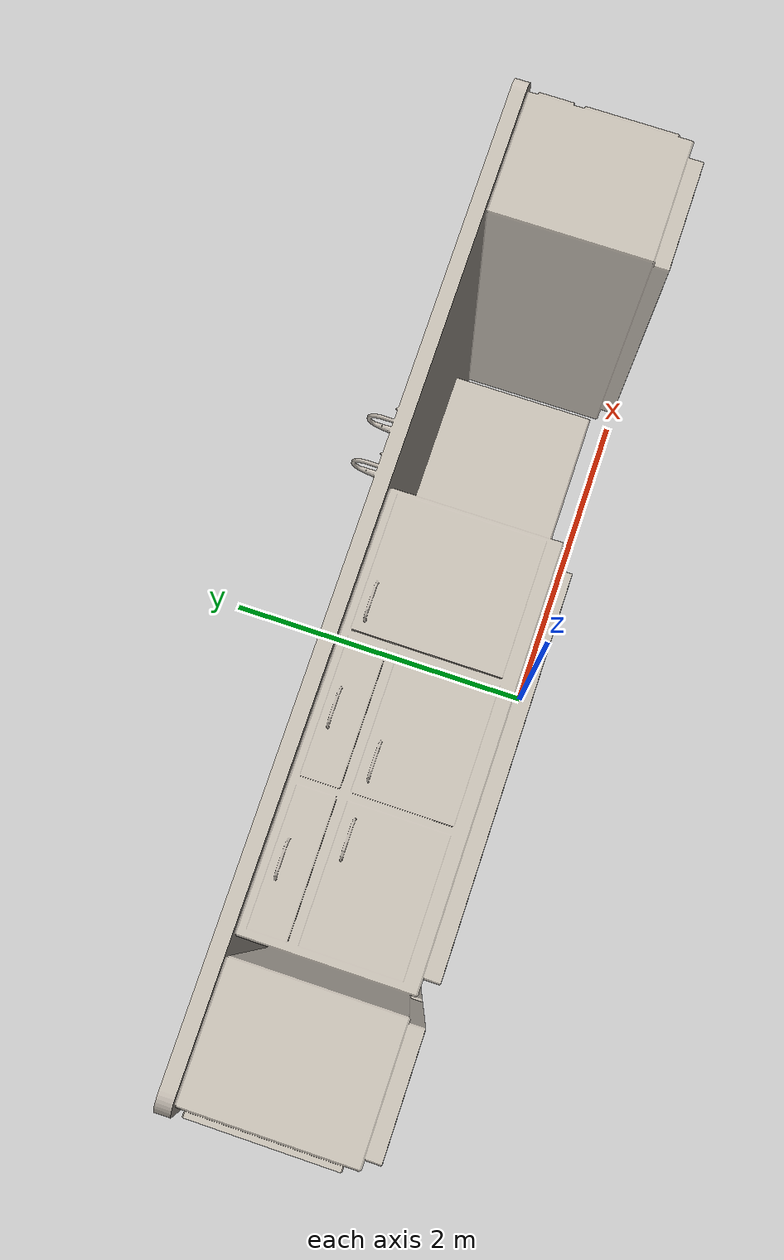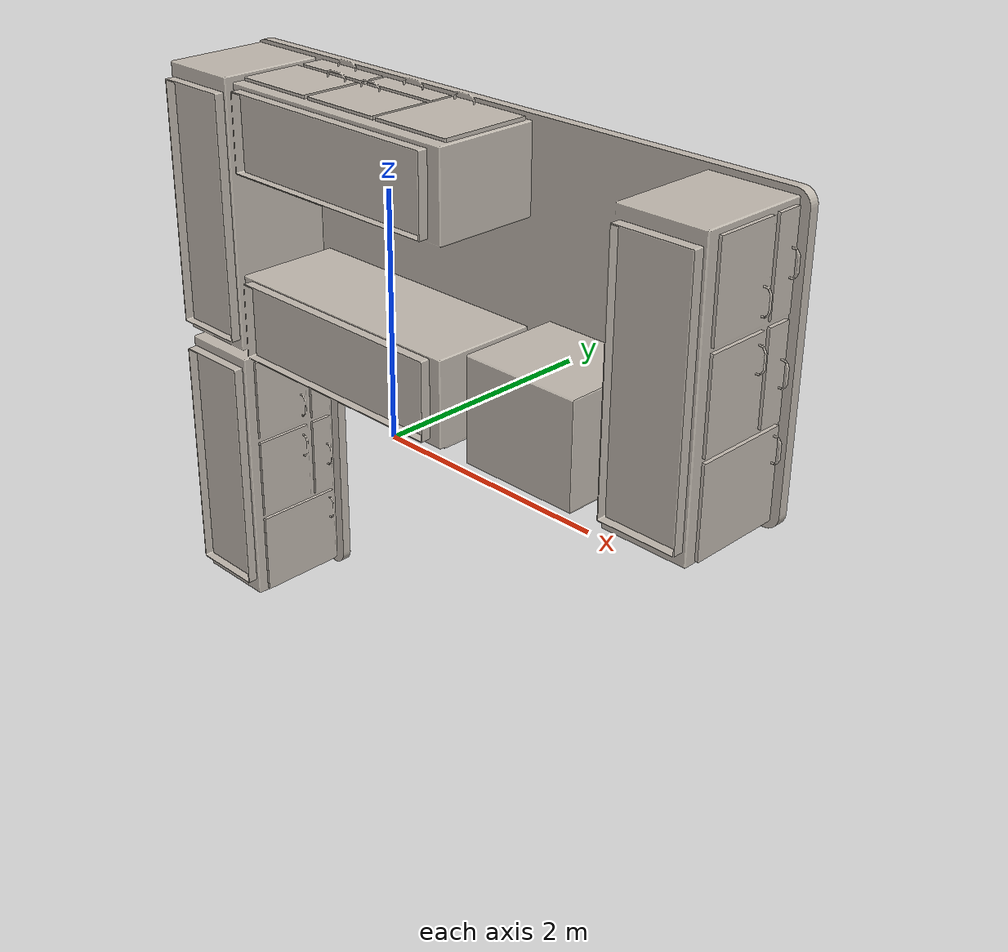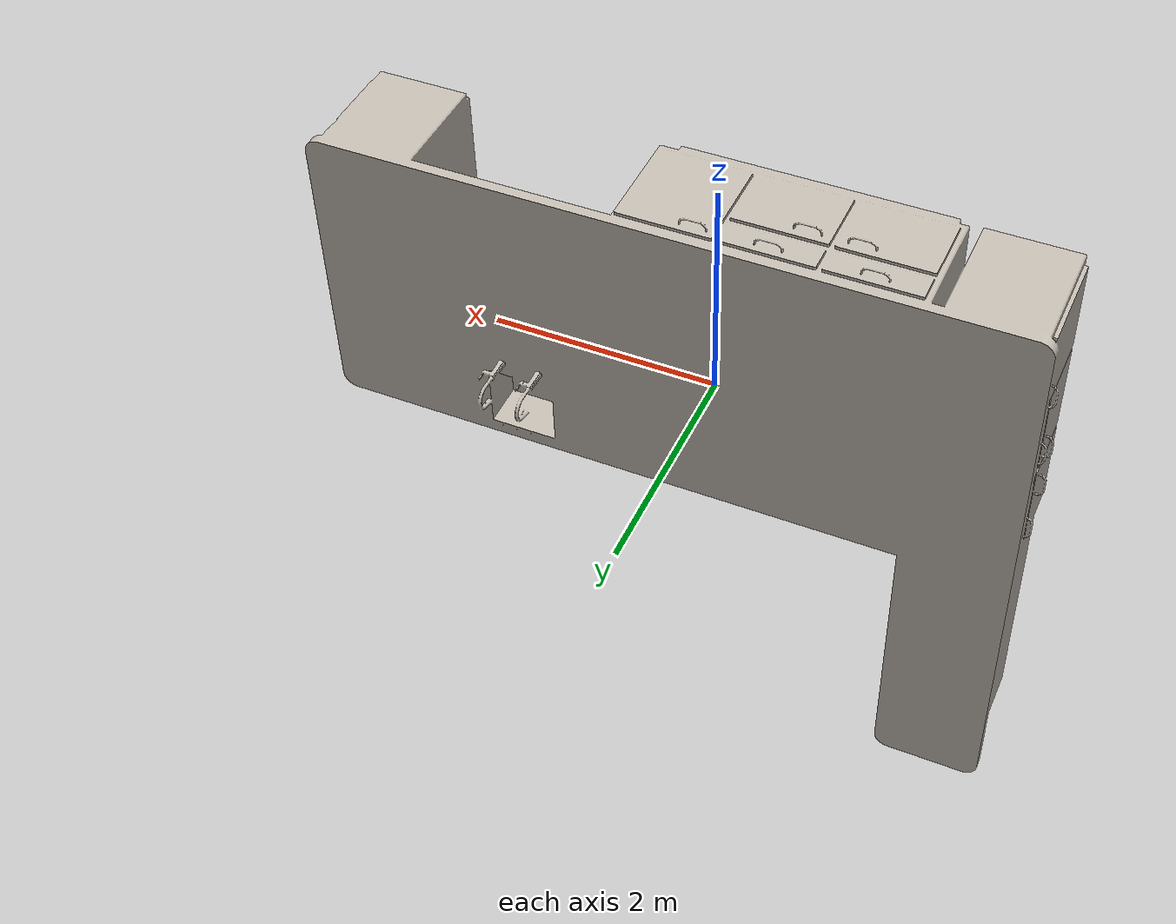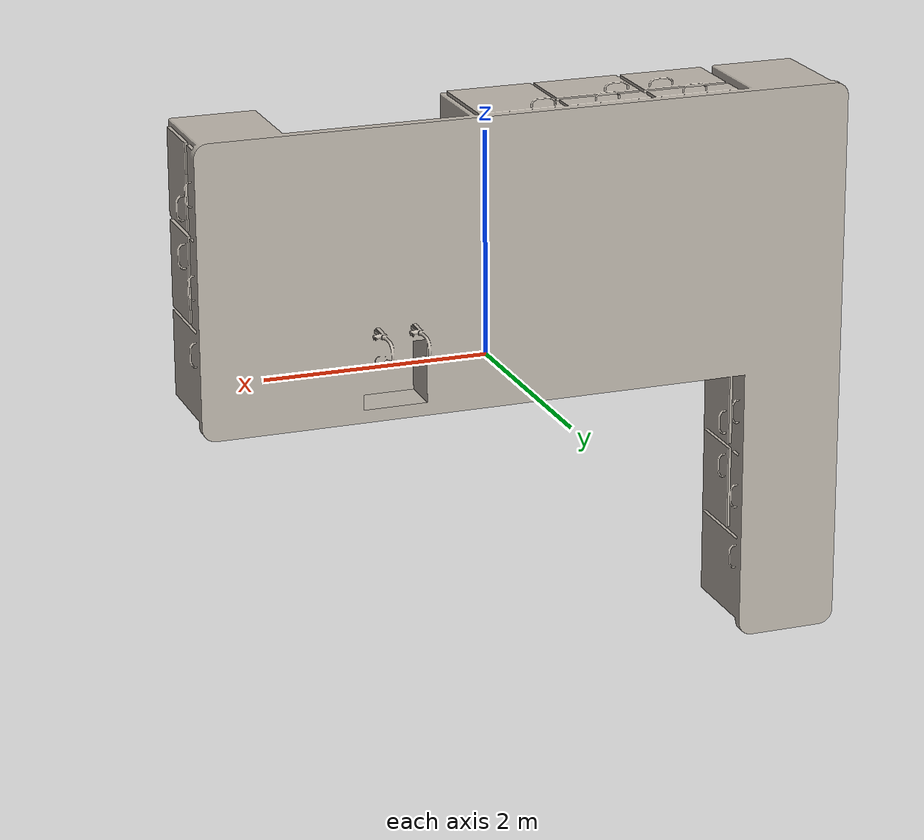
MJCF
<?xml version="1.0" ?>
<mujoco model="chemistry_lab_table">
  <asset>
    <texture type="2d" name="material_0" file="material_0.png"/>
    <material name="material_0" texture="material_0" specular="0.4000000000000001" shininess="0.001"/>
    <mesh file="chemistry_lab_table.obj" scale="0.9311 0.9311 0.9311"/>
    <mesh file="chemistry_lab_table/chemistry_lab_table_collision_0.obj" scale="0.9311 0.9311 0.9311"/>
    <mesh file="chemistry_lab_table/chemistry_lab_table_collision_1.obj" scale="0.9311 0.9311 0.9311"/>
    <mesh file="chemistry_lab_table/chemistry_lab_table_collision_2.obj" scale="0.9311 0.9311 0.9311"/>
    <mesh file="chemistry_lab_table/chemistry_lab_table_collision_3.obj" scale="0.9311 0.9311 0.9311"/>
    <mesh file="chemistry_lab_table/chemistry_lab_table_collision_4.obj" scale="0.9311 0.9311 0.9311"/>
    <mesh file="chemistry_lab_table/chemistry_lab_table_collision_5.obj" scale="0.9311 0.9311 0.9311"/>
    <mesh file="chemistry_lab_table/chemistry_lab_table_collision_6.obj" scale="0.9311 0.9311 0.9311"/>
    <mesh file="chemistry_lab_table/chemistry_lab_table_collision_7.obj" scale="0.9311 0.9311 0.9311"/>
    <mesh file="chemistry_lab_table/chemistry_lab_table_collision_8.obj" scale="0.9311 0.9311 0.9311"/>
    <mesh file="chemistry_lab_table/chemistry_lab_table_collision_9.obj" scale="0.9311 0.9311 0.9311"/>
    <mesh file="chemistry_lab_table/chemistry_lab_table_collision_10.obj" scale="0.9311 0.9311 0.9311"/>
    <mesh file="chemistry_lab_table/chemistry_lab_table_collision_11.obj" scale="0.9311 0.9311 0.9311"/>
    <mesh file="chemistry_lab_table/chemistry_lab_table_collision_12.obj" scale="0.9311 0.9311 0.9311"/>
    <mesh file="chemistry_lab_table/chemistry_lab_table_collision_13.obj" scale="0.9311 0.9311 0.9311"/>
    <mesh file="chemistry_lab_table/chemistry_lab_table_collision_14.obj" scale="0.9311 0.9311 0.9311"/>
    <mesh file="chemistry_lab_table/chemistry_lab_table_collision_15.obj" scale="0.9311 0.9311 0.9311"/>
    <mesh file="chemistry_lab_table/chemistry_lab_table_collision_16.obj" scale="0.9311 0.9311 0.9311"/>
    <mesh file="chemistry_lab_table/chemistry_lab_table_collision_17.obj" scale="0.9311 0.9311 0.9311"/>
    <mesh file="chemistry_lab_table/chemistry_lab_table_collision_18.obj" scale="0.9311 0.9311 0.9311"/>
    <mesh file="chemistry_lab_table/chemistry_lab_table_collision_19.obj" scale="0.9311 0.9311 0.9311"/>
  </asset>
  <worldbody>
    <body name="chemistry_lab_table">
      <inertial pos="0 0 0.7600" mass="0.02" diaginertia="0.0008 0.0008 0.0005"/>
      <geom material="material_0" mesh="chemistry_lab_table" class="visual"/>
      <geom mesh="chemistry_lab_table_collision_0" class="collision"/>
      <geom mesh="chemistry_lab_table_collision_1" class="collision"/>
      <geom mesh="chemistry_lab_table_collision_2" class="collision"/>
      <geom mesh="chemistry_lab_table_collision_3" class="collision"/>
      <geom mesh="chemistry_lab_table_collision_4" class="collision"/>
      <geom mesh="chemistry_lab_table_collision_5" class="collision"/>
      <geom mesh="chemistry_lab_table_collision_6" class="collision"/>
      <geom mesh="chemistry_lab_table_collision_7" class="collision"/>
      <geom mesh="chemistry_lab_table_collision_8" class="collision"/>
      <geom mesh="chemistry_lab_table_collision_9" class="collision"/>
      <geom mesh="chemistry_lab_table_collision_10" class="collision"/>
      <geom mesh="chemistry_lab_table_collision_11" class="collision"/>
      <geom mesh="chemistry_lab_table_collision_12" class="collision"/>
      <geom mesh="chemistry_lab_table_collision_13" class="collision"/>
      <geom mesh="chemistry_lab_table_collision_14" class="collision"/>
      <geom mesh="chemistry_lab_table_collision_15" class="collision"/>
      <geom mesh="chemistry_lab_table_collision_16" class="collision"/>
      <geom mesh="chemistry_lab_table_collision_17" class="collision"/>
      <geom mesh="chemistry_lab_table_collision_18" class="collision"/>
      <geom mesh="chemistry_lab_table_collision_19" class="collision"/>
      <site class="grasppoint" pos="0.0000 0.0000 0.9140"/>
      <site class="grasppoint" pos="0.0000 0.0000 1.2145"/>
      <site class="grasppoint" pos="0.0000 0.0000 1.4460"/>
      <site class="keypoint" pos="-2.6025 -2.4870 0.0000"/>
      <site class="keypoint" pos="2.6025 2.4870 0.0000"/>
      <site class="keypoint" pos="-2.6025 2.4870 0.0000"/>
      <site class="keypoint" pos="2.6025 -2.4870 0.0000"/>
      <site class="placepoint" pos="0.0000 0.0000 1.5500"/>
      <site name="top_site" pos="0 0 1.5200" size="0.01" rgba="1 0 0 0"/>
      <site name="bottom_site" pos="0 0 0.0" size="0.01" rgba="0 1 0 0"/>
    </body>
  </worldbody>
  <compiler boundmass="0.015" boundinertia="1e-05" angle="radian"/>
  <default>
    <default class="visual">
      <geom group="2" type="mesh" contype="0" conaffinity="0" density="50"/>
    </default>
    <default class="keypoint">
      <site type="sphere" size="0.01" group="3" rgba="1 0 0 1"/>
    </default>
    <default class="placepoint">
      <site type="sphere" size="0.01" group="2" rgba="0 0 1 0"/>
    </default>
    <default class="collision">
      <geom group="3" type="mesh" density="50" friction="1.5 0.1 0.1" solimp="0.9 0.95 0.001" solref="0.02 1"/>
    </default>
    <default class="grasppoint">
      <site type="sphere" size="0.005" group="4" rgba="0 0 1 1"/>
    </default>
  </default>
</mujoco>
